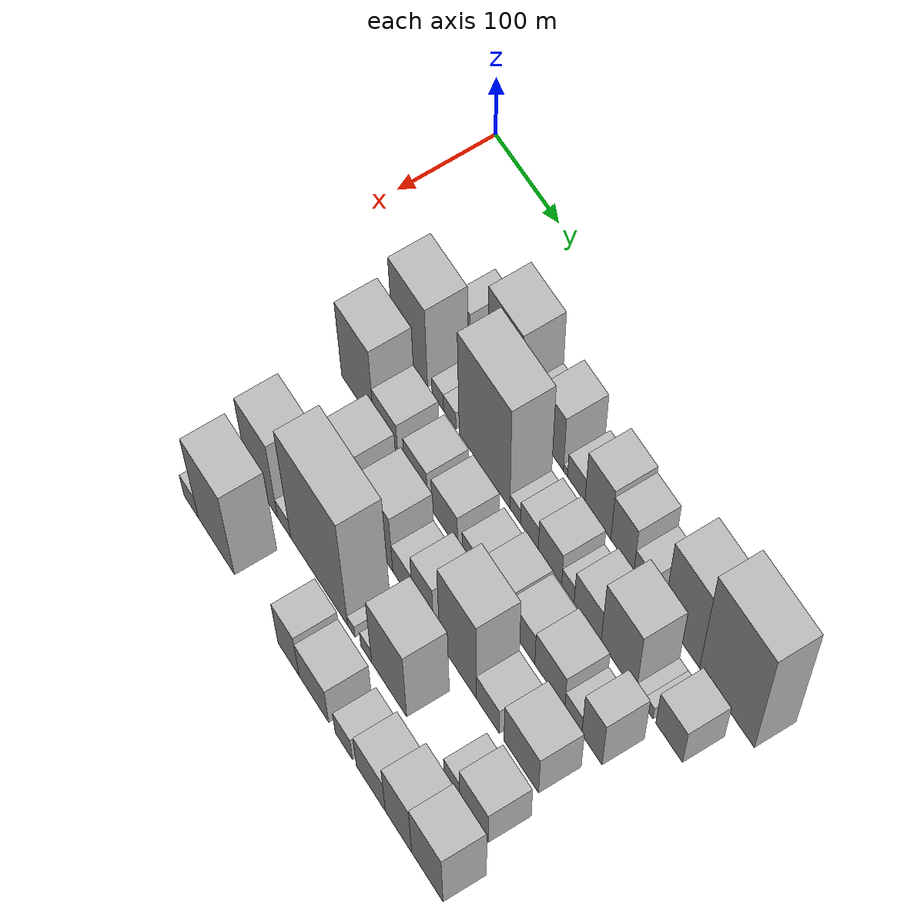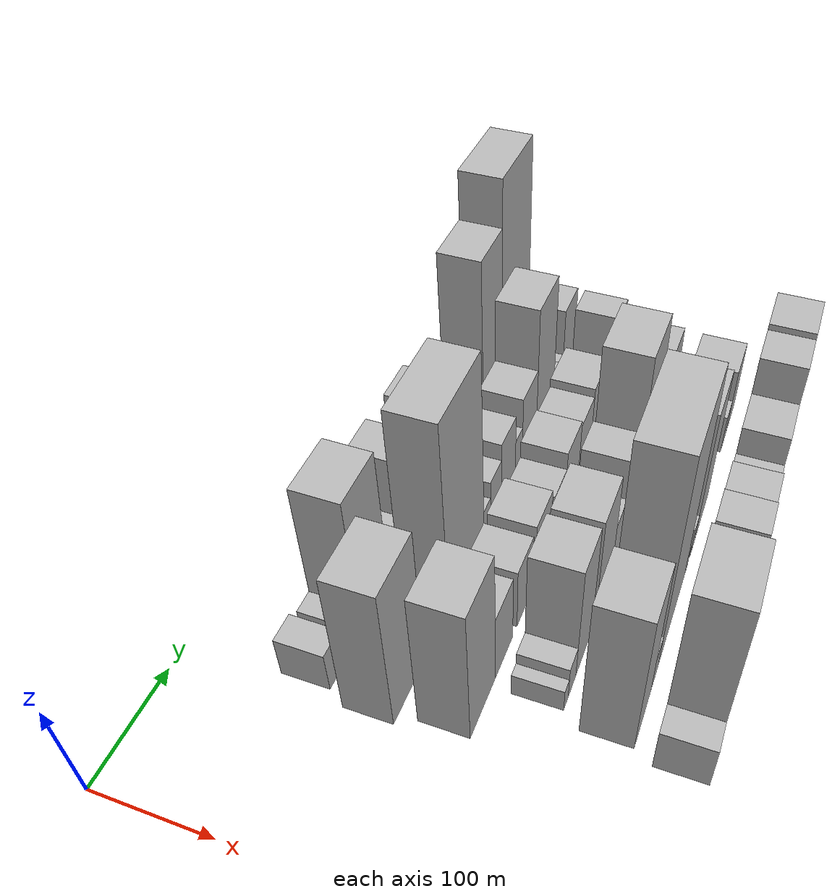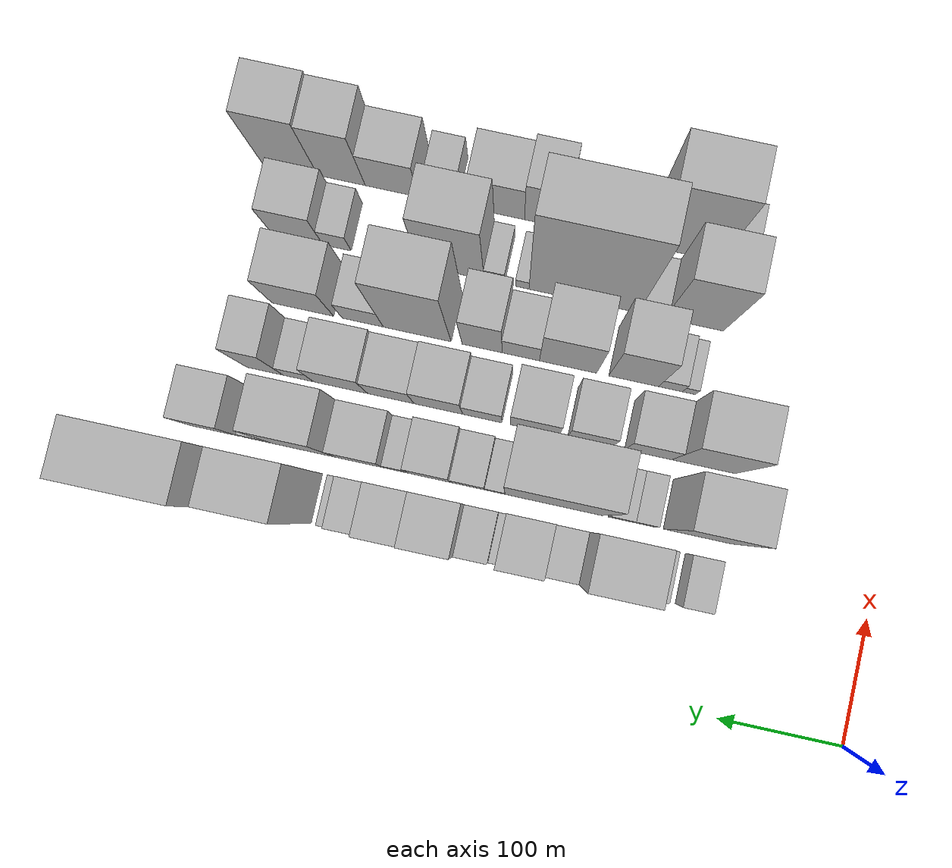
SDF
<sdf version="1.6">
 <world name="default">
  <model name="building_31">
   <static>1</static>
   <pose>100.0000 137.2129 0 0.000000 0.000000 0.000000</pose>
   <link name="link">
    <pose>0 0 21.00 0 0 0</pose>
    <collision name="collision"><geometry><box><size>40.0000 24.3643 42.0000</size></box></geometry></collision>
    <visual name="visual">
     <cast_shadows>0</cast_shadows>
     <geometry><box><size>40.0000 24.3643 42.0000</size></box></geometry>
     <material>
      <script>
       <uri>model://HANNAS_wall/materials/scripts</uri>
       <uri>model://HANNAS_wall/materials/textures</uri>
       <name>vrc/HANNAS_wall</name>
      </script>
     </material>
    </visual>
   </link>
  </model>
  <model name="building_32">
   <static>1</static>
   <pose>100.0000 168.2064 0 0.000000 0.000000 0.000000</pose>
   <link name="link">
    <pose>0 0 16.50 0 0 0</pose>
    <collision name="collision"><geometry><box><size>40.0000 19.6229 33.0000</size></box></geometry></collision>
    <visual name="visual">
     <cast_shadows>0</cast_shadows>
     <geometry><box><size>40.0000 19.6229 33.0000</size></box></geometry>
     <material>
      <script>
       <uri>model://HANNAS_wall/materials/scripts</uri>
       <uri>model://HANNAS_wall/materials/textures</uri>
       <name>vrc/HANNAS_wall</name>
      </script>
     </material>
    </visual>
   </link>
  </model>
  <model name="building_33">
   <static>1</static>
   <pose>100.0000 203.8029 0 0.000000 0.000000 0.000000</pose>
   <link name="link">
    <pose>0 0 73.50 0 0 0</pose>
    <collision name="collision"><geometry><box><size>40.0000 51.5702 147.0000</size></box></geometry></collision>
    <visual name="visual">
     <cast_shadows>0</cast_shadows>
     <geometry><box><size>40.0000 51.5702 147.0000</size></box></geometry>
     <material>
      <script>
       <uri>model://HANNAS_wall/materials/scripts</uri>
       <uri>model://HANNAS_wall/materials/textures</uri>
       <name>vrc/HANNAS_wall</name>
      </script>
     </material>
    </visual>
   </link>
  </model>
  <model name="building_34">
   <static>1</static>
   <pose>100.0000 243.6097 0 0.000000 0.000000 0.000000</pose>
   <link name="link">
    <pose>0 0 24.00 0 0 0</pose>
    <collision name="collision"><geometry><box><size>40.0000 28.0434 48.0000</size></box></geometry></collision>
    <visual name="visual">
     <cast_shadows>0</cast_shadows>
     <geometry><box><size>40.0000 28.0434 48.0000</size></box></geometry>
     <material>
      <script>
       <uri>model://HANNAS_wall/materials/scripts</uri>
       <uri>model://HANNAS_wall/materials/textures</uri>
       <name>vrc/HANNAS_wall</name>
      </script>
     </material>
    </visual>
   </link>
  </model>
  <model name="building_35">
   <static>1</static>
   <pose>100.0000 275.5706 0 0.000000 0.000000 0.000000</pose>
   <link name="link">
    <pose>0 0 54.00 0 0 0</pose>
    <collision name="collision"><geometry><box><size>40.0000 35.8784 108.0000</size></box></geometry></collision>
    <visual name="visual">
     <cast_shadows>0</cast_shadows>
     <geometry><box><size>40.0000 35.8784 108.0000</size></box></geometry>
     <material>
      <script>
       <uri>model://HANNAS_wall/materials/scripts</uri>
       <uri>model://HANNAS_wall/materials/textures</uri>
       <name>vrc/HANNAS_wall</name>
      </script>
     </material>
    </visual>
   </link>
  </model>
  <model name="building_36">
   <static>1</static>
   <pose>100.0000 296.6218 0 0.000000 0.000000 0.000000</pose>
   <link name="link">
    <pose>0 0 7.50 0 0 0</pose>
    <collision name="collision"><geometry><box><size>40.0000 6.2238 15.0000</size></box></geometry></collision>
    <visual name="visual">
     <cast_shadows>0</cast_shadows>
     <geometry><box><size>40.0000 6.2238 15.0000</size></box></geometry>
     <material>
      <script>
       <uri>model://HANNAS_wall/materials/scripts</uri>
       <uri>model://HANNAS_wall/materials/textures</uri>
       <name>vrc/HANNAS_wall</name>
      </script>
     </material>
    </visual>
   </link>
  </model>
  <model name="building_37">
   <static>1</static>
   <pose>100.0000 312.8875 0 0.000000 0.000000 0.000000</pose>
   <link name="link">
    <pose>0 0 24.00 0 0 0</pose>
    <collision name="collision"><geometry><box><size>40.0000 26.3076 48.0000</size></box></geometry></collision>
    <visual name="visual">
     <cast_shadows>0</cast_shadows>
     <geometry><box><size>40.0000 26.3076 48.0000</size></box></geometry>
     <material>
      <script>
       <uri>model://HANNAS_wall/materials/scripts</uri>
       <uri>model://HANNAS_wall/materials/textures</uri>
       <name>vrc/HANNAS_wall</name>
      </script>
     </material>
    </visual>
   </link>
  </model>
  <model name="building_38">
   <static>1</static>
   <pose>100.0000 345.4138 0 0.000000 0.000000 0.000000</pose>
   <link name="link">
    <pose>0 0 52.50 0 0 0</pose>
    <collision name="collision"><geometry><box><size>40.0000 38.7450 105.0000</size></box></geometry></collision>
    <visual name="visual">
     <cast_shadows>0</cast_shadows>
     <geometry><box><size>40.0000 38.7450 105.0000</size></box></geometry>
     <material>
      <script>
       <uri>model://HANNAS_wall/materials/scripts</uri>
       <uri>model://HANNAS_wall/materials/textures</uri>
       <name>vrc/HANNAS_wall</name>
      </script>
     </material>
    </visual>
   </link>
  </model>
  <model name="building_39">
   <static>1</static>
   <pose>100.0000 381.8537 0 0.000000 0.000000 0.000000</pose>
   <link name="link">
    <pose>0 0 46.50 0 0 0</pose>
    <collision name="collision"><geometry><box><size>40.0000 34.1349 93.0000</size></box></geometry></collision>
    <visual name="visual">
     <cast_shadows>0</cast_shadows>
     <geometry><box><size>40.0000 34.1349 93.0000</size></box></geometry>
     <material>
      <script>
       <uri>model://HANNAS_wall/materials/scripts</uri>
       <uri>model://HANNAS_wall/materials/textures</uri>
       <name>vrc/HANNAS_wall</name>
      </script>
     </material>
    </visual>
   </link>
  </model>
  <model name="building_40">
   <static>1</static>
   <pose>100.0000 412.3421 0 0.000000 0.000000 0.000000</pose>
   <link name="link">
    <pose>0 0 25.50 0 0 0</pose>
    <collision name="collision"><geometry><box><size>40.0000 26.8418 51.0000</size></box></geometry></collision>
    <visual name="visual">
     <cast_shadows>0</cast_shadows>
     <geometry><box><size>40.0000 26.8418 51.0000</size></box></geometry>
     <material>
      <script>
       <uri>model://HANNAS_wall/materials/scripts</uri>
       <uri>model://HANNAS_wall/materials/textures</uri>
       <name>vrc/HANNAS_wall</name>
      </script>
     </material>
    </visual>
   </link>
  </model>
  <model name="building_41">
   <static>1</static>
   <pose>100.0000 430.7759 0 0.000000 0.000000 0.000000</pose>
   <link name="link">
    <pose>0 0 10.50 0 0 0</pose>
    <collision name="collision"><geometry><box><size>40.0000 10.0258 21.0000</size></box></geometry></collision>
    <visual name="visual">
     <cast_shadows>0</cast_shadows>
     <geometry><box><size>40.0000 10.0258 21.0000</size></box></geometry>
     <material>
      <script>
       <uri>model://HANNAS_wall/materials/scripts</uri>
       <uri>model://HANNAS_wall/materials/textures</uri>
       <name>vrc/HANNAS_wall</name>
      </script>
     </material>
    </visual>
   </link>
  </model>
  <model name="building_42">
   <static>1</static>
   <pose>100.0000 468.9980 0 0.000000 0.000000 0.000000</pose>
   <link name="link">
    <pose>0 0 82.50 0 0 0</pose>
    <collision name="collision"><geometry><box><size>40.0000 52.4184 165.0000</size></box></geometry></collision>
    <visual name="visual">
     <cast_shadows>0</cast_shadows>
     <geometry><box><size>40.0000 52.4184 165.0000</size></box></geometry>
     <material>
      <script>
       <uri>model://HANNAS_wall/materials/scripts</uri>
       <uri>model://HANNAS_wall/materials/textures</uri>
       <name>vrc/HANNAS_wall</name>
      </script>
     </material>
    </visual>
   </link>
  </model>
  <model name="building_43">
   <static>1</static>
   <pose>100.0000 534.4264 0 0.000000 0.000000 0.000000</pose>
   <link name="link">
    <pose>0 0 106.50 0 0 0</pose>
    <collision name="collision"><geometry><box><size>40.0000 78.4383 213.0000</size></box></geometry></collision>
    <visual name="visual">
     <cast_shadows>0</cast_shadows>
     <geometry><box><size>40.0000 78.4383 213.0000</size></box></geometry>
     <material>
      <script>
       <uri>model://HANNAS_wall/materials/scripts</uri>
       <uri>model://HANNAS_wall/materials/textures</uri>
       <name>vrc/HANNAS_wall</name>
      </script>
     </material>
    </visual>
   </link>
  </model>
  <model name="building_85">
   <static>1</static>
   <pose>155.0000 142.6392 0 0.000000 0.000000 0.000000</pose>
   <link name="link">
    <pose>0 0 75.00 0 0 0</pose>
    <collision name="collision"><geometry><box><size>40.0000 55.2619 150.0000</size></box></geometry></collision>
    <visual name="visual">
     <cast_shadows>0</cast_shadows>
     <geometry><box><size>40.0000 55.2619 150.0000</size></box></geometry>
     <material>
      <script>
       <uri>model://HANNAS_wall/materials/scripts</uri>
       <uri>model://HANNAS_wall/materials/textures</uri>
       <name>vrc/HANNAS_wall</name>
      </script>
     </material>
    </visual>
   </link>
  </model>
  <model name="building_86">
   <static>1</static>
   <pose>155.0000 186.3872 0 0.000000 0.000000 0.000000</pose>
   <link name="link">
    <pose>0 0 16.50 0 0 0</pose>
    <collision name="collision"><geometry><box><size>40.0000 18.2342 33.0000</size></box></geometry></collision>
    <visual name="visual">
     <cast_shadows>0</cast_shadows>
     <geometry><box><size>40.0000 18.2342 33.0000</size></box></geometry>
     <material>
      <script>
       <uri>model://HANNAS_wall/materials/scripts</uri>
       <uri>model://HANNAS_wall/materials/textures</uri>
       <name>vrc/HANNAS_wall</name>
      </script>
     </material>
    </visual>
   </link>
  </model>
  <model name="building_87">
   <static>1</static>
   <pose>155.0000 205.1898 0 0.000000 0.000000 0.000000</pose>
   <link name="link">
    <pose>0 0 16.50 0 0 0</pose>
    <collision name="collision"><geometry><box><size>40.0000 19.3710 33.0000</size></box></geometry></collision>
    <visual name="visual">
     <cast_shadows>0</cast_shadows>
     <geometry><box><size>40.0000 19.3710 33.0000</size></box></geometry>
     <material>
      <script>
       <uri>model://HANNAS_wall/materials/scripts</uri>
       <uri>model://HANNAS_wall/materials/textures</uri>
       <name>vrc/HANNAS_wall</name>
      </script>
     </material>
    </visual>
   </link>
  </model>
  <model name="building_88">
   <static>1</static>
   <pose>155.0000 258.9706 0 0.000000 0.000000 0.000000</pose>
   <link name="link">
    <pose>0 0 100.50 0 0 0</pose>
    <collision name="collision"><geometry><box><size>40.0000 78.1904 201.0000</size></box></geometry></collision>
    <visual name="visual">
     <cast_shadows>0</cast_shadows>
     <geometry><box><size>40.0000 78.1904 201.0000</size></box></geometry>
     <material>
      <script>
       <uri>model://HANNAS_wall/materials/scripts</uri>
       <uri>model://HANNAS_wall/materials/textures</uri>
       <name>vrc/HANNAS_wall</name>
      </script>
     </material>
    </visual>
   </link>
  </model>
  <model name="building_89">
   <static>1</static>
   <pose>155.0000 306.1345 0 0.000000 0.000000 0.000000</pose>
   <link name="link">
    <pose>0 0 15.00 0 0 0</pose>
    <collision name="collision"><geometry><box><size>40.0000 16.1374 30.0000</size></box></geometry></collision>
    <visual name="visual">
     <cast_shadows>0</cast_shadows>
     <geometry><box><size>40.0000 16.1374 30.0000</size></box></geometry>
     <material>
      <script>
       <uri>model://HANNAS_wall/materials/scripts</uri>
       <uri>model://HANNAS_wall/materials/textures</uri>
       <name>vrc/HANNAS_wall</name>
      </script>
     </material>
    </visual>
   </link>
  </model>
  <model name="building_90">
   <static>1</static>
   <pose>155.0000 327.7226 0 0.000000 0.000000 0.000000</pose>
   <link name="link">
    <pose>0 0 24.00 0 0 0</pose>
    <collision name="collision"><geometry><box><size>40.0000 27.0387 48.0000</size></box></geometry></collision>
    <visual name="visual">
     <cast_shadows>0</cast_shadows>
     <geometry><box><size>40.0000 27.0387 48.0000</size></box></geometry>
     <material>
      <script>
       <uri>model://HANNAS_wall/materials/scripts</uri>
       <uri>model://HANNAS_wall/materials/textures</uri>
       <name>vrc/HANNAS_wall</name>
      </script>
     </material>
    </visual>
   </link>
  </model>
  <model name="building_91">
   <static>1</static>
   <pose>155.0000 358.8055 0 0.000000 0.000000 0.000000</pose>
   <link name="link">
    <pose>0 0 33.00 0 0 0</pose>
    <collision name="collision"><geometry><box><size>40.0000 35.1271 66.0000</size></box></geometry></collision>
    <visual name="visual">
     <cast_shadows>0</cast_shadows>
     <geometry><box><size>40.0000 35.1271 66.0000</size></box></geometry>
     <material>
      <script>
       <uri>model://HANNAS_wall/materials/scripts</uri>
       <uri>model://HANNAS_wall/materials/textures</uri>
       <name>vrc/HANNAS_wall</name>
      </script>
     </material>
    </visual>
   </link>
  </model>
  <model name="building_92">
   <static>1</static>
   <pose>155.0000 385.6916 0 0.000000 0.000000 0.000000</pose>
   <link name="link">
    <pose>0 0 18.00 0 0 0</pose>
    <collision name="collision"><geometry><box><size>40.0000 18.6451 36.0000</size></box></geometry></collision>
    <visual name="visual">
     <cast_shadows>0</cast_shadows>
     <geometry><box><size>40.0000 18.6451 36.0000</size></box></geometry>
     <material>
      <script>
       <uri>model://HANNAS_wall/materials/scripts</uri>
       <uri>model://HANNAS_wall/materials/textures</uri>
       <name>vrc/HANNAS_wall</name>
      </script>
     </material>
    </visual>
   </link>
  </model>
  <model name="building_93">
   <static>1</static>
   <pose>155.0000 414.9712 0 0.000000 0.000000 0.000000</pose>
   <link name="link">
    <pose>0 0 34.50 0 0 0</pose>
    <collision name="collision"><geometry><box><size>40.0000 39.9142 69.0000</size></box></geometry></collision>
    <visual name="visual">
     <cast_shadows>0</cast_shadows>
     <geometry><box><size>40.0000 39.9142 69.0000</size></box></geometry>
     <material>
      <script>
       <uri>model://HANNAS_wall/materials/scripts</uri>
       <uri>model://HANNAS_wall/materials/textures</uri>
       <name>vrc/HANNAS_wall</name>
      </script>
     </material>
    </visual>
   </link>
  </model>
  <model name="building_94">
   <static>1</static>
   <pose>155.0000 460.6095 0 0.000000 0.000000 0.000000</pose>
   <link name="link">
    <pose>0 0 67.50 0 0 0</pose>
    <collision name="collision"><geometry><box><size>40.0000 51.3624 135.0000</size></box></geometry></collision>
    <visual name="visual">
     <cast_shadows>0</cast_shadows>
     <geometry><box><size>40.0000 51.3624 135.0000</size></box></geometry>
     <material>
      <script>
       <uri>model://HANNAS_wall/materials/scripts</uri>
       <uri>model://HANNAS_wall/materials/textures</uri>
       <name>vrc/HANNAS_wall</name>
      </script>
     </material>
    </visual>
   </link>
  </model>
  <model name="building_95">
   <static>1</static>
   <pose>155.0000 492.5485 0 0.000000 0.000000 0.000000</pose>
   <link name="link">
    <pose>0 0 13.50 0 0 0</pose>
    <collision name="collision"><geometry><box><size>40.0000 12.5156 27.0000</size></box></geometry></collision>
    <visual name="visual">
     <cast_shadows>0</cast_shadows>
     <geometry><box><size>40.0000 12.5156 27.0000</size></box></geometry>
     <material>
      <script>
       <uri>model://HANNAS_wall/materials/scripts</uri>
       <uri>model://HANNAS_wall/materials/textures</uri>
       <name>vrc/HANNAS_wall</name>
      </script>
     </material>
    </visual>
   </link>
  </model>
  <model name="building_96">
   <static>1</static>
   <pose>155.0000 504.8740 0 0.000000 0.000000 0.000000</pose>
   <link name="link">
    <pose>0 0 13.50 0 0 0</pose>
    <collision name="collision"><geometry><box><size>40.0000 12.1354 27.0000</size></box></geometry></collision>
    <visual name="visual">
     <cast_shadows>0</cast_shadows>
     <geometry><box><size>40.0000 12.1354 27.0000</size></box></geometry>
     <material>
      <script>
       <uri>model://HANNAS_wall/materials/scripts</uri>
       <uri>model://HANNAS_wall/materials/textures</uri>
       <name>vrc/HANNAS_wall</name>
      </script>
     </material>
    </visual>
   </link>
  </model>
  <model name="building_97">
   <static>1</static>
   <pose>155.0000 534.1987 0 0.000000 0.000000 0.000000</pose>
   <link name="link">
    <pose>0 0 37.50 0 0 0</pose>
    <collision name="collision"><geometry><box><size>40.0000 38.5141 75.0000</size></box></geometry></collision>
    <visual name="visual">
     <cast_shadows>0</cast_shadows>
     <geometry><box><size>40.0000 38.5141 75.0000</size></box></geometry>
     <material>
      <script>
       <uri>model://HANNAS_wall/materials/scripts</uri>
       <uri>model://HANNAS_wall/materials/textures</uri>
       <name>vrc/HANNAS_wall</name>
      </script>
     </material>
    </visual>
   </link>
  </model>
  <model name="building_135">
   <static>1</static>
   <pose>210.0000 149.0389 0 0.000000 0.000000 0.000000</pose>
   <link name="link">
    <pose>0 0 72.00 0 0 0</pose>
    <collision name="collision"><geometry><box><size>40.0000 51.3633 144.0000</size></box></geometry></collision>
    <visual name="visual">
     <cast_shadows>0</cast_shadows>
     <geometry><box><size>40.0000 51.3633 144.0000</size></box></geometry>
     <material>
      <script>
       <uri>model://HANNAS_wall/materials/scripts</uri>
       <uri>model://HANNAS_wall/materials/textures</uri>
       <name>vrc/HANNAS_wall</name>
      </script>
     </material>
    </visual>
   </link>
  </model>
  <model name="building_136">
   <static>1</static>
   <pose>210.0000 193.8286 0 0.000000 0.000000 0.000000</pose>
   <link name="link">
    <pose>0 0 36.00 0 0 0</pose>
    <collision name="collision"><geometry><box><size>40.0000 38.2161 72.0000</size></box></geometry></collision>
    <visual name="visual">
     <cast_shadows>0</cast_shadows>
     <geometry><box><size>40.0000 38.2161 72.0000</size></box></geometry>
     <material>
      <script>
       <uri>model://HANNAS_wall/materials/scripts</uri>
       <uri>model://HANNAS_wall/materials/textures</uri>
       <name>vrc/HANNAS_wall</name>
      </script>
     </material>
    </visual>
   </link>
  </model>
  <model name="building_137">
   <static>1</static>
   <pose>210.0000 241.0541 0 0.000000 0.000000 0.000000</pose>
   <link name="link">
    <pose>0 0 33.00 0 0 0</pose>
    <collision name="collision"><geometry><box><size>40.0000 36.2350 66.0000</size></box></geometry></collision>
    <visual name="visual">
     <cast_shadows>0</cast_shadows>
     <geometry><box><size>40.0000 36.2350 66.0000</size></box></geometry>
     <material>
      <script>
       <uri>model://HANNAS_wall/materials/scripts</uri>
       <uri>model://HANNAS_wall/materials/textures</uri>
       <name>vrc/HANNAS_wall</name>
      </script>
     </material>
    </visual>
   </link>
  </model>
  <model name="building_138">
   <static>1</static>
   <pose>210.0000 285.9108 0 0.000000 0.000000 0.000000</pose>
   <link name="link">
    <pose>0 0 34.50 0 0 0</pose>
    <collision name="collision"><geometry><box><size>40.0000 39.4783 69.0000</size></box></geometry></collision>
    <visual name="visual">
     <cast_shadows>0</cast_shadows>
     <geometry><box><size>40.0000 39.4783 69.0000</size></box></geometry>
     <material>
      <script>
       <uri>model://HANNAS_wall/materials/scripts</uri>
       <uri>model://HANNAS_wall/materials/textures</uri>
       <name>vrc/HANNAS_wall</name>
      </script>
     </material>
    </visual>
   </link>
  </model>
  <model name="building_139">
   <static>1</static>
   <pose>210.0000 328.5919 0 0.000000 0.000000 0.000000</pose>
   <link name="link">
    <pose>0 0 27.00 0 0 0</pose>
    <collision name="collision"><geometry><box><size>40.0000 31.8839 54.0000</size></box></geometry></collision>
    <visual name="visual">
     <cast_shadows>0</cast_shadows>
     <geometry><box><size>40.0000 31.8839 54.0000</size></box></geometry>
     <material>
      <script>
       <uri>model://HANNAS_wall/materials/scripts</uri>
       <uri>model://HANNAS_wall/materials/textures</uri>
       <name>vrc/HANNAS_wall</name>
      </script>
     </material>
    </visual>
   </link>
  </model>
  <model name="building_140">
   <static>1</static>
   <pose>210.0000 364.3609 0 0.000000 0.000000 0.000000</pose>
   <link name="link">
    <pose>0 0 36.00 0 0 0</pose>
    <collision name="collision"><geometry><box><size>40.0000 39.6540 72.0000</size></box></geometry></collision>
    <visual name="visual">
     <cast_shadows>0</cast_shadows>
     <geometry><box><size>40.0000 39.6540 72.0000</size></box></geometry>
     <material>
      <script>
       <uri>model://HANNAS_wall/materials/scripts</uri>
       <uri>model://HANNAS_wall/materials/textures</uri>
       <name>vrc/HANNAS_wall</name>
      </script>
     </material>
    </visual>
   </link>
  </model>
  <model name="building_141">
   <static>1</static>
   <pose>210.0000 403.1392 0 0.000000 0.000000 0.000000</pose>
   <link name="link">
    <pose>0 0 33.00 0 0 0</pose>
    <collision name="collision"><geometry><box><size>40.0000 37.9028 66.0000</size></box></geometry></collision>
    <visual name="visual">
     <cast_shadows>0</cast_shadows>
     <geometry><box><size>40.0000 37.9028 66.0000</size></box></geometry>
     <material>
      <script>
       <uri>model://HANNAS_wall/materials/scripts</uri>
       <uri>model://HANNAS_wall/materials/textures</uri>
       <name>vrc/HANNAS_wall</name>
      </script>
     </material>
    </visual>
   </link>
  </model>
  <model name="building_142">
   <static>1</static>
   <pose>210.0000 444.2615 0 0.000000 0.000000 0.000000</pose>
   <link name="link">
    <pose>0 0 37.50 0 0 0</pose>
    <collision name="collision"><geometry><box><size>40.0000 44.3418 75.0000</size></box></geometry></collision>
    <visual name="visual">
     <cast_shadows>0</cast_shadows>
     <geometry><box><size>40.0000 44.3418 75.0000</size></box></geometry>
     <material>
      <script>
       <uri>model://HANNAS_wall/materials/scripts</uri>
       <uri>model://HANNAS_wall/materials/textures</uri>
       <name>vrc/HANNAS_wall</name>
      </script>
     </material>
    </visual>
   </link>
  </model>
  <model name="building_143">
   <static>1</static>
   <pose>210.0000 478.9311 0 0.000000 0.000000 0.000000</pose>
   <link name="link">
    <pose>0 0 21.00 0 0 0</pose>
    <collision name="collision"><geometry><box><size>40.0000 24.9975 42.0000</size></box></geometry></collision>
    <visual name="visual">
     <cast_shadows>0</cast_shadows>
     <geometry><box><size>40.0000 24.9975 42.0000</size></box></geometry>
     <material>
      <script>
       <uri>model://HANNAS_wall/materials/scripts</uri>
       <uri>model://HANNAS_wall/materials/textures</uri>
       <name>vrc/HANNAS_wall</name>
      </script>
     </material>
    </visual>
   </link>
  </model>
  <model name="building_144">
   <static>1</static>
   <pose>210.0000 506.2931 0 0.000000 0.000000 0.000000</pose>
   <link name="link">
    <pose>0 0 49.50 0 0 0</pose>
    <collision name="collision"><geometry><box><size>40.0000 29.7265 99.0000</size></box></geometry></collision>
    <visual name="visual">
     <cast_shadows>0</cast_shadows>
     <geometry><box><size>40.0000 29.7265 99.0000</size></box></geometry>
     <material>
      <script>
       <uri>model://HANNAS_wall/materials/scripts</uri>
       <uri>model://HANNAS_wall/materials/textures</uri>
       <name>vrc/HANNAS_wall</name>
      </script>
     </material>
    </visual>
   </link>
  </model>
  <model name="building_186">
   <static>1</static>
   <pose>265.0000 172.0142 0 0.000000 0.000000 0.000000</pose>
   <link name="link">
    <pose>0 0 12.00 0 0 0</pose>
    <collision name="collision"><geometry><box><size>40.0000 10.6747 24.0000</size></box></geometry></collision>
    <visual name="visual">
     <cast_shadows>0</cast_shadows>
     <geometry><box><size>40.0000 10.6747 24.0000</size></box></geometry>
     <material>
      <script>
       <uri>model://HANNAS_wall/materials/scripts</uri>
       <uri>model://HANNAS_wall/materials/textures</uri>
       <name>vrc/HANNAS_wall</name>
      </script>
     </material>
    </visual>
   </link>
  </model>
  <model name="building_187">
   <static>1</static>
   <pose>265.0000 186.9871 0 0.000000 0.000000 0.000000</pose>
   <link name="link">
    <pose>0 0 18.00 0 0 0</pose>
    <collision name="collision"><geometry><box><size>40.0000 19.2710 36.0000</size></box></geometry></collision>
    <visual name="visual">
     <cast_shadows>0</cast_shadows>
     <geometry><box><size>40.0000 19.2710 36.0000</size></box></geometry>
     <material>
      <script>
       <uri>model://HANNAS_wall/materials/scripts</uri>
       <uri>model://HANNAS_wall/materials/textures</uri>
       <name>vrc/HANNAS_wall</name>
      </script>
     </material>
    </visual>
   </link>
  </model>
  <model name="building_188">
   <static>1</static>
   <pose>265.0000 216.9808 0 0.000000 0.000000 0.000000</pose>
   <link name="link">
    <pose>0 0 61.50 0 0 0</pose>
    <collision name="collision"><geometry><box><size>40.0000 40.7165 123.0000</size></box></geometry></collision>
    <visual name="visual">
     <cast_shadows>0</cast_shadows>
     <geometry><box><size>40.0000 40.7165 123.0000</size></box></geometry>
     <material>
      <script>
       <uri>model://HANNAS_wall/materials/scripts</uri>
       <uri>model://HANNAS_wall/materials/textures</uri>
       <name>vrc/HANNAS_wall</name>
      </script>
     </material>
    </visual>
   </link>
  </model>
  <model name="building_189">
   <static>1</static>
   <pose>265.0000 270.7020 0 0.000000 0.000000 0.000000</pose>
   <link name="link">
    <pose>0 0 58.50 0 0 0</pose>
    <collision name="collision"><geometry><box><size>40.0000 46.7258 117.0000</size></box></geometry></collision>
    <visual name="visual">
     <cast_shadows>0</cast_shadows>
     <geometry><box><size>40.0000 46.7258 117.0000</size></box></geometry>
     <material>
      <script>
       <uri>model://HANNAS_wall/materials/scripts</uri>
       <uri>model://HANNAS_wall/materials/textures</uri>
       <name>vrc/HANNAS_wall</name>
      </script>
     </material>
    </visual>
   </link>
  </model>
  <model name="building_190">
   <static>1</static>
   <pose>265.0000 309.3010 0 0.000000 0.000000 0.000000</pose>
   <link name="link">
    <pose>0 0 30.00 0 0 0</pose>
    <collision name="collision"><geometry><box><size>40.0000 30.4721 60.0000</size></box></geometry></collision>
    <visual name="visual">
     <cast_shadows>0</cast_shadows>
     <geometry><box><size>40.0000 30.4721 60.0000</size></box></geometry>
     <material>
      <script>
       <uri>model://HANNAS_wall/materials/scripts</uri>
       <uri>model://HANNAS_wall/materials/textures</uri>
       <name>vrc/HANNAS_wall</name>
      </script>
     </material>
    </visual>
   </link>
  </model>
  <model name="building_191">
   <static>1</static>
   <pose>265.0000 340.8959 0 0.000000 0.000000 0.000000</pose>
   <link name="link">
    <pose>0 0 51.00 0 0 0</pose>
    <collision name="collision"><geometry><box><size>40.0000 32.7177 102.0000</size></box></geometry></collision>
    <visual name="visual">
     <cast_shadows>0</cast_shadows>
     <geometry><box><size>40.0000 32.7177 102.0000</size></box></geometry>
     <material>
      <script>
       <uri>model://HANNAS_wall/materials/scripts</uri>
       <uri>model://HANNAS_wall/materials/textures</uri>
       <name>vrc/HANNAS_wall</name>
      </script>
     </material>
    </visual>
   </link>
  </model>
  <model name="building_192">
   <static>1</static>
   <pose>265.0000 394.0456 0 0.000000 0.000000 0.000000</pose>
   <link name="link">
    <pose>0 0 85.50 0 0 0</pose>
    <collision name="collision"><geometry><box><size>40.0000 55.5817 171.0000</size></box></geometry></collision>
    <visual name="visual">
     <cast_shadows>0</cast_shadows>
     <geometry><box><size>40.0000 55.5817 171.0000</size></box></geometry>
     <material>
      <script>
       <uri>model://HANNAS_wall/materials/scripts</uri>
       <uri>model://HANNAS_wall/materials/textures</uri>
       <name>vrc/HANNAS_wall</name>
      </script>
     </material>
    </visual>
   </link>
  </model>
  <model name="building_193">
   <static>1</static>
   <pose>265.0000 438.8470 0 0.000000 0.000000 0.000000</pose>
   <link name="link">
    <pose>0 0 28.50 0 0 0</pose>
    <collision name="collision"><geometry><box><size>40.0000 34.0211 57.0000</size></box></geometry></collision>
    <visual name="visual">
     <cast_shadows>0</cast_shadows>
     <geometry><box><size>40.0000 34.0211 57.0000</size></box></geometry>
     <material>
      <script>
       <uri>model://HANNAS_wall/materials/scripts</uri>
       <uri>model://HANNAS_wall/materials/textures</uri>
       <name>vrc/HANNAS_wall</name>
      </script>
     </material>
    </visual>
   </link>
  </model>
  <model name="building_194">
   <static>1</static>
   <pose>265.0000 488.3261 0 0.000000 0.000000 0.000000</pose>
   <link name="link">
    <pose>0 0 43.50 0 0 0</pose>
    <collision name="collision"><geometry><box><size>40.0000 50.9370 87.0000</size></box></geometry></collision>
    <visual name="visual">
     <cast_shadows>0</cast_shadows>
     <geometry><box><size>40.0000 50.9370 87.0000</size></box></geometry>
     <material>
      <script>
       <uri>model://HANNAS_wall/materials/scripts</uri>
       <uri>model://HANNAS_wall/materials/textures</uri>
       <name>vrc/HANNAS_wall</name>
      </script>
     </material>
    </visual>
   </link>
  </model>
  <model name="building_236">
   <static>1</static>
   <pose>320.0000 179.2547 0 0.000000 0.000000 0.000000</pose>
   <link name="link">
    <pose>0 0 75.00 0 0 0</pose>
    <collision name="collision"><geometry><box><size>40.0000 48.4498 150.0000</size></box></geometry></collision>
    <visual name="visual">
     <cast_shadows>0</cast_shadows>
     <geometry><box><size>40.0000 48.4498 150.0000</size></box></geometry>
     <material>
      <script>
       <uri>model://HANNAS_wall/materials/scripts</uri>
       <uri>model://HANNAS_wall/materials/textures</uri>
       <name>vrc/HANNAS_wall</name>
      </script>
     </material>
    </visual>
   </link>
  </model>
  <model name="building_237">
   <static>1</static>
   <pose>320.0000 214.1935 0 0.000000 0.000000 0.000000</pose>
   <link name="link">
    <pose>0 0 19.50 0 0 0</pose>
    <collision name="collision"><geometry><box><size>40.0000 21.4279 39.0000</size></box></geometry></collision>
    <visual name="visual">
     <cast_shadows>0</cast_shadows>
     <geometry><box><size>40.0000 21.4279 39.0000</size></box></geometry>
     <material>
      <script>
       <uri>model://HANNAS_wall/materials/scripts</uri>
       <uri>model://HANNAS_wall/materials/textures</uri>
       <name>vrc/HANNAS_wall</name>
      </script>
     </material>
    </visual>
   </link>
  </model>
  <model name="building_238">
   <static>1</static>
   <pose>320.0000 269.7214 0 0.000000 0.000000 0.000000</pose>
   <link name="link">
    <pose>0 0 112.50 0 0 0</pose>
    <collision name="collision"><geometry><box><size>40.0000 89.6280 225.0000</size></box></geometry></collision>
    <visual name="visual">
     <cast_shadows>0</cast_shadows>
     <geometry><box><size>40.0000 89.6280 225.0000</size></box></geometry>
     <material>
      <script>
       <uri>model://HANNAS_wall/materials/scripts</uri>
       <uri>model://HANNAS_wall/materials/textures</uri>
       <name>vrc/HANNAS_wall</name>
      </script>
     </material>
    </visual>
   </link>
  </model>
  <model name="building_239">
   <static>1</static>
   <pose>320.0000 320.0781 0 0.000000 0.000000 0.000000</pose>
   <link name="link">
    <pose>0 0 12.00 0 0 0</pose>
    <collision name="collision"><geometry><box><size>40.0000 11.0854 24.0000</size></box></geometry></collision>
    <visual name="visual">
     <cast_shadows>0</cast_shadows>
     <geometry><box><size>40.0000 11.0854 24.0000</size></box></geometry>
     <material>
      <script>
       <uri>model://HANNAS_wall/materials/scripts</uri>
       <uri>model://HANNAS_wall/materials/textures</uri>
       <name>vrc/HANNAS_wall</name>
      </script>
     </material>
    </visual>
   </link>
  </model>
  <model name="building_240">
   <static>1</static>
   <pose>320.0000 343.0110 0 0.000000 0.000000 0.000000</pose>
   <link name="link">
    <pose>0 0 16.50 0 0 0</pose>
    <collision name="collision"><geometry><box><size>40.0000 16.7802 33.0000</size></box></geometry></collision>
    <visual name="visual">
     <cast_shadows>0</cast_shadows>
     <geometry><box><size>40.0000 16.7802 33.0000</size></box></geometry>
     <material>
      <script>
       <uri>model://HANNAS_wall/materials/scripts</uri>
       <uri>model://HANNAS_wall/materials/textures</uri>
       <name>vrc/HANNAS_wall</name>
      </script>
     </material>
    </visual>
   </link>
  </model>
  <model name="building_241">
   <static>1</static>
   <pose>320.0000 378.1029 0 0.000000 0.000000 0.000000</pose>
   <link name="link">
    <pose>0 0 72.00 0 0 0</pose>
    <collision name="collision"><geometry><box><size>40.0000 53.4036 144.0000</size></box></geometry></collision>
    <visual name="visual">
     <cast_shadows>0</cast_shadows>
     <geometry><box><size>40.0000 53.4036 144.0000</size></box></geometry>
     <material>
      <script>
       <uri>model://HANNAS_wall/materials/scripts</uri>
       <uri>model://HANNAS_wall/materials/textures</uri>
       <name>vrc/HANNAS_wall</name>
      </script>
     </material>
    </visual>
   </link>
  </model>
  <model name="building_242">
   <static>1</static>
   <pose>320.0000 472.7783 0 0.000000 0.000000 0.000000</pose>
   <link name="link">
    <pose>0 0 21.00 0 0 0</pose>
    <collision name="collision"><geometry><box><size>40.0000 23.3157 42.0000</size></box></geometry></collision>
    <visual name="visual">
     <cast_shadows>0</cast_shadows>
     <geometry><box><size>40.0000 23.3157 42.0000</size></box></geometry>
     <material>
      <script>
       <uri>model://HANNAS_wall/materials/scripts</uri>
       <uri>model://HANNAS_wall/materials/textures</uri>
       <name>vrc/HANNAS_wall</name>
      </script>
     </material>
    </visual>
   </link>
  </model>
  <model name="building_243">
   <static>1</static>
   <pose>320.0000 505.5030 0 0.000000 0.000000 0.000000</pose>
   <link name="link">
    <pose>0 0 37.50 0 0 0</pose>
    <collision name="collision"><geometry><box><size>40.0000 42.1338 75.0000</size></box></geometry></collision>
    <visual name="visual">
     <cast_shadows>0</cast_shadows>
     <geometry><box><size>40.0000 42.1338 75.0000</size></box></geometry>
     <material>
      <script>
       <uri>model://HANNAS_wall/materials/scripts</uri>
       <uri>model://HANNAS_wall/materials/textures</uri>
       <name>vrc/HANNAS_wall</name>
      </script>
     </material>
    </visual>
   </link>
  </model>
  <model name="building_288">
   <static>1</static>
   <pose>375.0000 158.0004 0 0.000000 0.000000 0.000000</pose>
   <link name="link">
    <pose>0 0 22.50 0 0 0</pose>
    <collision name="collision"><geometry><box><size>40.0000 23.2697 45.0000</size></box></geometry></collision>
    <visual name="visual">
     <cast_shadows>0</cast_shadows>
     <geometry><box><size>40.0000 23.2697 45.0000</size></box></geometry>
     <material>
      <script>
       <uri>model://HANNAS_wall/materials/scripts</uri>
       <uri>model://HANNAS_wall/materials/textures</uri>
       <name>vrc/HANNAS_wall</name>
      </script>
     </material>
    </visual>
   </link>
  </model>
  <model name="building_289">
   <static>1</static>
   <pose>375.0000 198.7430 0 0.000000 0.000000 0.000000</pose>
   <link name="link">
    <pose>0 0 84.00 0 0 0</pose>
    <collision name="collision"><geometry><box><size>40.0000 58.2156 168.0000</size></box></geometry></collision>
    <visual name="visual">
     <cast_shadows>0</cast_shadows>
     <geometry><box><size>40.0000 58.2156 168.0000</size></box></geometry>
     <material>
      <script>
       <uri>model://HANNAS_wall/materials/scripts</uri>
       <uri>model://HANNAS_wall/materials/textures</uri>
       <name>vrc/HANNAS_wall</name>
      </script>
     </material>
    </visual>
   </link>
  </model>
  <model name="building_290">
   <static>1</static>
   <pose>375.0000 313.5956 0 0.000000 0.000000 0.000000</pose>
   <link name="link">
    <pose>0 0 46.50 0 0 0</pose>
    <collision name="collision"><geometry><box><size>40.0000 33.1632 93.0000</size></box></geometry></collision>
    <visual name="visual">
     <cast_shadows>0</cast_shadows>
     <geometry><box><size>40.0000 33.1632 93.0000</size></box></geometry>
     <material>
      <script>
       <uri>model://HANNAS_wall/materials/scripts</uri>
       <uri>model://HANNAS_wall/materials/textures</uri>
       <name>vrc/HANNAS_wall</name>
      </script>
     </material>
    </visual>
   </link>
  </model>
  <model name="building_291">
   <static>1</static>
   <pose>375.0000 352.9941 0 0.000000 0.000000 0.000000</pose>
   <link name="link">
    <pose>0 0 39.00 0 0 0</pose>
    <collision name="collision"><geometry><box><size>40.0000 45.6339 78.0000</size></box></geometry></collision>
    <visual name="visual">
     <cast_shadows>0</cast_shadows>
     <geometry><box><size>40.0000 45.6339 78.0000</size></box></geometry>
     <material>
      <script>
       <uri>model://HANNAS_wall/materials/scripts</uri>
       <uri>model://HANNAS_wall/materials/textures</uri>
       <name>vrc/HANNAS_wall</name>
      </script>
     </material>
    </visual>
   </link>
  </model>
  <model name="building_292">
   <static>1</static>
   <pose>375.0000 398.9702 0 0.000000 0.000000 0.000000</pose>
   <link name="link">
    <pose>0 0 25.50 0 0 0</pose>
    <collision name="collision"><geometry><box><size>40.0000 26.3182 51.0000</size></box></geometry></collision>
    <visual name="visual">
     <cast_shadows>0</cast_shadows>
     <geometry><box><size>40.0000 26.3182 51.0000</size></box></geometry>
     <material>
      <script>
       <uri>model://HANNAS_wall/materials/scripts</uri>
       <uri>model://HANNAS_wall/materials/textures</uri>
       <name>vrc/HANNAS_wall</name>
      </script>
     </material>
    </visual>
   </link>
  </model>
  <model name="building_293">
   <static>1</static>
   <pose>375.0000 440.1340 0 0.000000 0.000000 0.000000</pose>
   <link name="link">
    <pose>0 0 37.50 0 0 0</pose>
    <collision name="collision"><geometry><box><size>40.0000 44.0094 75.0000</size></box></geometry></collision>
    <visual name="visual">
     <cast_shadows>0</cast_shadows>
     <geometry><box><size>40.0000 44.0094 75.0000</size></box></geometry>
     <material>
      <script>
       <uri>model://HANNAS_wall/materials/scripts</uri>
       <uri>model://HANNAS_wall/materials/textures</uri>
       <name>vrc/HANNAS_wall</name>
      </script>
     </material>
    </visual>
   </link>
  </model>
  <model name="building_294">
   <static>1</static>
   <pose>375.0000 481.8685 0 0.000000 0.000000 0.000000</pose>
   <link name="link">
    <pose>0 0 57.00 0 0 0</pose>
    <collision name="collision"><geometry><box><size>40.0000 39.4596 114.0000</size></box></geometry></collision>
    <visual name="visual">
     <cast_shadows>0</cast_shadows>
     <geometry><box><size>40.0000 39.4596 114.0000</size></box></geometry>
     <material>
      <script>
       <uri>model://HANNAS_wall/materials/scripts</uri>
       <uri>model://HANNAS_wall/materials/textures</uri>
       <name>vrc/HANNAS_wall</name>
      </script>
     </material>
    </visual>
   </link>
  </model>
  <model name="building_295">
   <static>1</static>
   <pose>375.0000 524.7749 0 0.000000 0.000000 0.000000</pose>
   <link name="link">
    <pose>0 0 60.00 0 0 0</pose>
    <collision name="collision"><geometry><box><size>40.0000 46.3533 120.0000</size></box></geometry></collision>
    <visual name="visual">
     <cast_shadows>0</cast_shadows>
     <geometry><box><size>40.0000 46.3533 120.0000</size></box></geometry>
     <material>
      <script>
       <uri>model://HANNAS_wall/materials/scripts</uri>
       <uri>model://HANNAS_wall/materials/textures</uri>
       <name>vrc/HANNAS_wall</name>
      </script>
     </material>
    </visual>
   </link>
  </model>
 </world>
</sdf>
